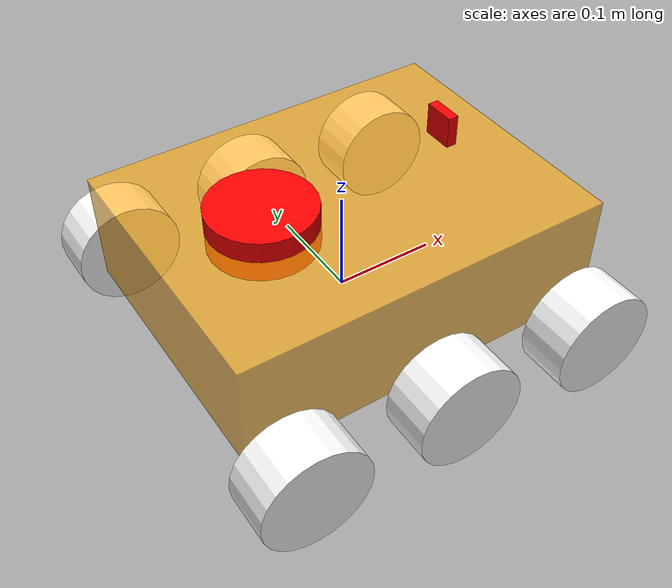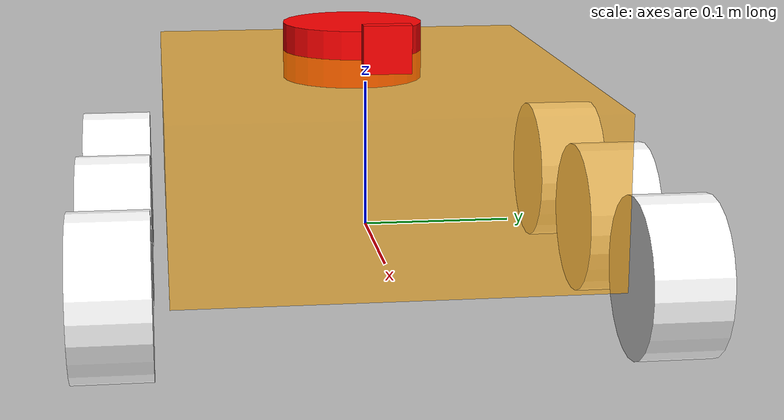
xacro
<?xml version="1.0"?>

<robot name="hermes" xmlns:xacro="http://www.ros.org/wiki/xacro">
    <!-- Use Gazebo or not -->
    <xacro:arg name="use_gazebo" default="false" />

    <!-- Use mock components or not? Note: If using mock, must disable gazebo -->
    <xacro:arg name="use_mock" default="false" />

    <!-- Actual Hardware -->
    <xacro:arg name="use_hardware" default="true" />

    <!-- Use ros2_control or not? -->
    <xacro:arg name="use_ros2_control" default="true" />

    <!-- my controllers parameters yaml file-->
    <xacro:property name="controllers_yaml" value="$(find hermes_description)/config/my_controllers.yaml" />

    <xacro:property name="controllers_config" value="${xacro.load_yaml(controllers_yaml)}" />

    <xacro:include filename="hermes_core.xacro" />
    <xacro:include filename="hermes.gazebo" />
    <xacro:if value="$(arg use_ros2_control)">
        <xacro:include filename="ros2_control.xacro" />
    </xacro:if>
    <xacro:unless value="$(arg use_ros2_control)">
        <xacro:include filename="gazebo_control.xacro" />
    </xacro:unless>
    <xacro:include filename="lidar.xacro" />
    <xacro:include filename="camera.xacro" />

</robot>

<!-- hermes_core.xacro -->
<robot name="hermes" xmlns:xacro="http://www.ros.org/wiki/xacro">

<xacro:include filename="materials.xacro" />
<xacro:include filename="inertial_macros.xacro" />
<xacro:include filename="hermes_parameters.xacro" />

<!-- BASE LINK -->
<link name="base_link">

</link>

<!-- CHASSIS LINK -->

<joint name="chassis_joint" type="fixed">
    <parent link="base_link" />
    <child link="chassis" />
    <!-- Move origin to back of robot -->
    <origin xyz="-${chassis_length/2} 0 0" />
</joint>

<link name="chassis">
    <visual>
        <origin xyz="${chassis_length/2} 0 ${chassis_height/2}" />
        <geometry>
            <box size="${chassis_length} ${chassis_width} ${chassis_height}" />
        </geometry>
        <material name="orange" />
    </visual>
    <collision>
        <origin xyz="${chassis_length/2} 0 ${chassis_height/2}" />
        <geometry>
            <box size="${chassis_length} ${chassis_width} ${chassis_height}" />
        </geometry>
    </collision>
    <xacro:inertial_box mass="${chassis_mass}" x="${chassis_length}" y="${chassis_width}" z="${chassis_height}">
        <origin xyz="${chassis_length/2} 0 ${chassis_height/2}" rpy="0 0 0"/>
    </xacro:inertial_box>
</link>

<gazebo reference="chassis">
    <material>Gazebo/Orange</material>
    <mu1 value="0.001" />
    <mu2 value="0.001" />
</gazebo>

<!-- WHEEL LINK -->

<xacro:macro name="wheel" params="prefix_side prefix_position position_offset reflect">
    <joint name="${prefix_side}_${prefix_position}_wheel_joint" type="continuous">
        <parent link="base_link" />
        <child link="${prefix_side}_${prefix_position}_wheel" />
        <!-- rpy is so that we can rotate the wheel along the X axis, because cylinders by default are oriented z-up -->
        <origin xyz="${position_offset} ${reflect * (chassis_width/2 + wheel_length / 2 +  wheel_offset) } 0" rpy="${-reflect*pi/2} 0 0" />
        <axis xyz="0 0 ${reflect}" />
    </joint>

    <link name="${prefix_side}_${prefix_position}_wheel">
        <visual>
            <geometry>
                <cylinder radius="${wheel_radius}" length="${wheel_length}" />
            </geometry>
            <material name="black" />
        </visual>
        <collision>
            <geometry>
                <cylinder radius="${wheel_radius}" length="${wheel_length}" />
            </geometry>
        </collision>
        <xacro:inertial_cylinder mass="${wheel_mass}" length="${wheel_length}" radius="${wheel_radius}">
            <origin xyz="0 0 0" rpy="0 0 0" />
        </xacro:inertial_cylinder>

    </link>
    <gazebo reference="${prefix_side}_${prefix_position}_wheel">
        <material>Gazebo/Black</material>
        <mu1 value="0.2" />
        <mu2 value="0.2" />
    </gazebo>
</xacro:macro>

<!-- LEFT WHEEL -->
<xacro:wheel prefix_side="left" prefix_position="rear" position_offset="-0.15" reflect="1" />
<xacro:wheel prefix_side="left" prefix_position="middle" position_offset="0" reflect="1" />
<xacro:wheel prefix_side="left" prefix_position="front" position_offset="0.15" reflect="1" />

<!-- RIGHT WHEEL -->
<xacro:wheel prefix_side="right" prefix_position="rear" position_offset="-0.15" reflect="-1" />
<xacro:wheel prefix_side="right" prefix_position="middle" position_offset="0" reflect="-1" />
<xacro:wheel prefix_side="right" prefix_position="front" position_offset="0.15" reflect="-1" />

</robot>

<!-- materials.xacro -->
<robot name="hermes" xmlns:xacro="http://www.ros.org/wiki/xacro" >

<material name="silver">
  <color rgba="0.700 0.700 0.700 1.000"/>
</material>

<material name="orange">
    <color rgba="1.000 0.650 0 0.600" />
</material>

<material name="black">
    <color rgba="1.000 1.000 1.000 1.000" />
</material>

<material name="red">
    <color rgba="1 0 0 1" />
</material>

</robot>

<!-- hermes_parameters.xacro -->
<robot name="hermes" xmlns:xacro="http://www.ros.org/wiki/xacro">

    <!-- CHASSIS PARAMETERS -->
    <xacro:property name="chassis_width" value="0.275" />
    <xacro:property name="chassis_length" value="0.36" />
    <xacro:property name="chassis_height" value="0.11" />

    <!-- WHEEL PARAMETERS -->
    <xacro:property name="wheel_radius" value="0.052" />
    <xacro:property name="wheel_length" value="0.05" />

    <!--MASSES IN KG-->
    <xacro:property name="wheel_mass" value="0.08" />
    <xacro:property name="chassis_mass" value="4" />

    <!-- LIDAR PARAMETERS -->

    <!-- CAMERA PARAMETERS -->

    <!-- The height of the camera above the chassis top-->
    <xacro:property name="camera_height" value="0.03" />
    <!-- How far the wheel is from the body of the robot -->
    <xacro:property name="wheel_offset" value="0.01" />

</robot>

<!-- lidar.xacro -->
<robot name="hermes" xmlns:xacro="http://www.ros.org/wiki/xacro">

    <joint name="laser_joint" type="fixed">
        <parent link="chassis" />
        <child link="ldlidar_link" />
        <origin xyz="0.1 0 ${chassis_height}" rpy="0 0 0"/>
    </joint>

    <link name="ldlidar_link">

        <visual>
            <geometry>
                <cylinder radius="0.05" length="0.04" />
            </geometry>
            <material name="red" />
        </visual>

        <collision>
            <geometry>
                <cylinder radius="0.05" length="0.04" />
            </geometry>
        </collision>

        <xacro:inertial_cylinder mass="0.1" length="0.04" radius="0.05">
            <origin xyz="0 0 0" rpy="0 0 0" />
        </xacro:inertial_cylinder>

    </link>

    <gazebo reference="ldlidar_link">
        <!-- A scanning lidar ray-->
        <sensor name="laser" type="gpu_lidar">
            <!-- Origin of the virtual sensor -->
            <pose relative_to="ldlidar_link"> 0 0 0 0 0 0 </pose>

            <topic>scan</topic>
            <visualize>true</visualize>
            <update_rate>10</update_rate>

            <ray>
                <scan>
                    <horizontal>
                        <samples>360</samples>
                        <resolution>1</resolution>
                        <min_angle>-3.14</min_angle>
                        <max_angle>3.14</max_angle>
                    </horizontal>
                </scan>
                <range>
                    <min>0.3</min>
                    <max>12</max>
                    <resolution>0.01</resolution>
                </range>
            </ray>

        </sensor>

    </gazebo>
</robot>

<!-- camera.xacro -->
<robot name="hermes" xmlns:xacro="http://www.ros.org/wiki/xacro">

    <joint name="camera_joint" type="fixed">
        <parent link="chassis" />
        <child link="camera_link" />
        <origin xyz="${chassis_length * 0.8} 0 ${chassis_height + camera_height}" rpy="0 0 0"/>
    </joint>

    <link name="camera_link">

        <visual>
            <geometry>
                <box size="0.010 0.03 0.03" />
            </geometry>
            <material name="red" />
        </visual>
        <!-- Add collision if camera sticks out -->

    </link>

    <!-- UPDATE: Camera does NOT use a diff coord sys-->
    <!-- Camera uses a different coordinate system than ROS2 standard. Convert between -->

    <gazebo reference="camera_link">
        <material>Gazebo/Red</material>

        <!-- A scanning lidar ray-->

        <sensor name="camera" type="camera">
            <pose relative_to="camera_link"> 0 0 0 0 0 0 </pose>

            <topic>camera</topic>
            <visualize>true</visualize>
            <update_rate>10</update_rate>

            <camera>
                <!-- Adjust based on camera -->
                <horizontal_fov>1.1</horizontal_fov>
                <image>
                    <format>R8G8B8</format>
                    <width>640</width>
                    <height>480</height>
                </image>
                <clip>
                    <near>0.05</near>
                    <far>8.0</far>
                </clip>
            </camera>
        </sensor>
    </gazebo>
</robot>
